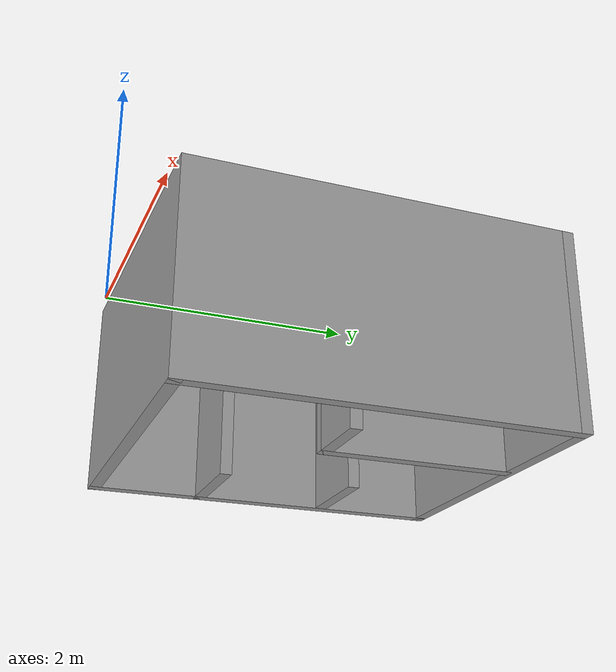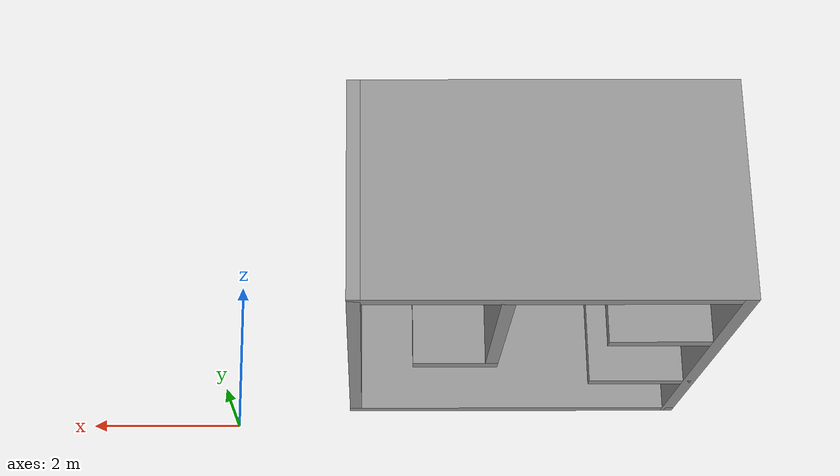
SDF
<?xml version='1.0'?>
<sdf version='1.7'>
  <model name='resturent_model'>
    <pose>-2.89337 2.81917 0 0 -0 0</pose>
    <link name='Wall_1'>
      <collision name='Wall_1_Collision'>
        <geometry>
          <box>
            <size>4.75 0.15 2.5</size>
          </box>
        </geometry>
        <pose>0 0 1.25 0 -0 0</pose>
      </collision>
      <visual name='Wall_1_Visual'>
        <pose>0 0 1.25 0 -0 0</pose>
        <geometry>
          <box>
            <size>4.75 0.15 2.5</size>
          </box>
        </geometry>
        <material>
          <script>
            <uri>file://media/materials/scripts/gazebo.material</uri>
            <name>Gazebo/Grey</name>
          </script>
          <ambient>1 1 1 1</ambient>
        </material>
        <meta>
          <layer>0</layer>
        </meta>
      </visual>
      <pose>-2.81837 0.444172 0 0 -0 -1.5708</pose>
    </link>
    <link name='Wall_11'>
      <collision name='Wall_11_Collision'>
        <geometry>
          <box>
            <size>1.25 0.15 2.5</size>
          </box>
        </geometry>
        <pose>0 0 1.25 0 -0 0</pose>
      </collision>
      <visual name='Wall_11_Visual'>
        <pose>0 0 1.25 0 -0 0</pose>
        <geometry>
          <box>
            <size>1.25 0.15 2.5</size>
          </box>
        </geometry>
        <material>
          <script>
            <uri>file://media/materials/scripts/gazebo.material</uri>
            <name>Gazebo/Grey</name>
          </script>
          <ambient>1 1 1 1</ambient>
        </material>
        <meta>
          <layer>0</layer>
        </meta>
      </visual>
      <pose>-2.21808 -0.473882 0 0 -0 0</pose>
    </link>
    <link name='Wall_19'>
      <collision name='Wall_19_Collision'>
        <geometry>
          <box>
            <size>2.5 0.15 2.5</size>
          </box>
        </geometry>
        <pose>0 0 1.25 0 -0 0</pose>
      </collision>
      <visual name='Wall_19_Visual'>
        <pose>0 0 1.25 0 -0 0</pose>
        <geometry>
          <box>
            <size>2.5 0.15 2.5</size>
          </box>
        </geometry>
        <material>
          <script>
            <uri>file://media/materials/scripts/gazebo.material</uri>
            <name>Gazebo/Grey</name>
          </script>
          <ambient>1 1 1 1</ambient>
        </material>
        <meta>
          <layer>0</layer>
        </meta>
      </visual>
      <pose>-0.330263 1.50389 0 0 -0 -1.5708</pose>
    </link>
    <link name='Wall_2'>
      <collision name='Wall_2_Collision'>
        <geometry>
          <box>
            <size>4.25 0.15 2.5</size>
          </box>
        </geometry>
        <pose>0 0 1.25 0 -0 0</pose>
      </collision>
      <visual name='Wall_2_Visual'>
        <pose>0 0 1.25 0 -0 0</pose>
        <geometry>
          <box>
            <size>4.25 0.15 2.5</size>
          </box>
        </geometry>
        <material>
          <script>
            <uri>file://media/materials/scripts/gazebo.material</uri>
            <name>Gazebo/Grey</name>
          </script>
          <ambient>1 1 1 1</ambient>
        </material>
        <meta>
          <layer>0</layer>
        </meta>
      </visual>
      <pose>-0.768371 -1.85583 0 0 -0 0</pose>
    </link>
    <link name='Wall_20'>
      <collision name='Wall_20_Collision'>
        <geometry>
          <box>
            <size>1 0.15 2.5</size>
          </box>
        </geometry>
        <pose>0 0 1.25 0 -0 0</pose>
      </collision>
      <visual name='Wall_20_Visual'>
        <pose>0 0 1.25 0 -0 0</pose>
        <geometry>
          <box>
            <size>1 0.15 2.5</size>
          </box>
        </geometry>
        <material>
          <script>
            <uri>file://media/materials/scripts/gazebo.material</uri>
            <name>Gazebo/Grey</name>
          </script>
          <ambient>1 1 1 1</ambient>
        </material>
        <meta>
          <layer>0</layer>
        </meta>
      </visual>
      <pose>0.094737 0.328892 0 0 -0 0</pose>
    </link>
    <link name='Wall_3'>
      <collision name='Wall_3_Collision'>
        <geometry>
          <box>
            <size>4.75 0.15 2.5</size>
          </box>
        </geometry>
        <pose>0 0 1.25 0 -0 0</pose>
      </collision>
      <visual name='Wall_3_Visual'>
        <pose>0 0 1.25 0 -0 0</pose>
        <geometry>
          <box>
            <size>4.75 0.15 2.5</size>
          </box>
        </geometry>
        <material>
          <script>
            <uri>file://media/materials/scripts/gazebo.material</uri>
            <name>Gazebo/Grey</name>
          </script>
          <ambient>1 1 1 1</ambient>
        </material>
        <meta>
          <layer>0</layer>
        </meta>
      </visual>
      <pose>1.28163 0.444172 0 0 -0 1.5708</pose>
    </link>
    <link name='Wall_4'>
      <collision name='Wall_4_Collision'>
        <geometry>
          <box>
            <size>4.25 0.15 2.5</size>
          </box>
        </geometry>
        <pose>0 0 1.25 0 -0 0</pose>
      </collision>
      <visual name='Wall_4_Visual'>
        <pose>0 0 1.25 0 -0 0</pose>
        <geometry>
          <box>
            <size>4.25 0.15 2.5</size>
          </box>
        </geometry>
        <material>
          <script>
            <uri>file://media/materials/scripts/gazebo.material</uri>
            <name>Gazebo/Grey</name>
          </script>
          <ambient>1 1 1 1</ambient>
        </material>
        <meta>
          <layer>0</layer>
        </meta>
      </visual>
      <pose>-0.768371 2.74417 0 0 -0 3.14159</pose>
    </link>
    <link name='Wall_9'>
      <collision name='Wall_9_Collision'>
        <geometry>
          <box>
            <size>1.25 0.15 2.5</size>
          </box>
        </geometry>
        <pose>0 0 1.25 0 -0 0</pose>
      </collision>
      <visual name='Wall_9_Visual'>
        <pose>0 0 1.25 0 -0 0</pose>
        <geometry>
          <box>
            <size>1.25 0.15 2.5</size>
          </box>
        </geometry>
        <material>
          <script>
            <uri>file://media/materials/scripts/gazebo.material</uri>
            <name>Gazebo/Grey</name>
          </script>
          <ambient>1 1 1 1</ambient>
        </material>
        <meta>
          <layer>0</layer>
        </meta>
      </visual>
      <pose>-2.20486 1.21892 0 0 -0 0</pose>
    </link>
    <static>1</static>
  </model>
</sdf>
